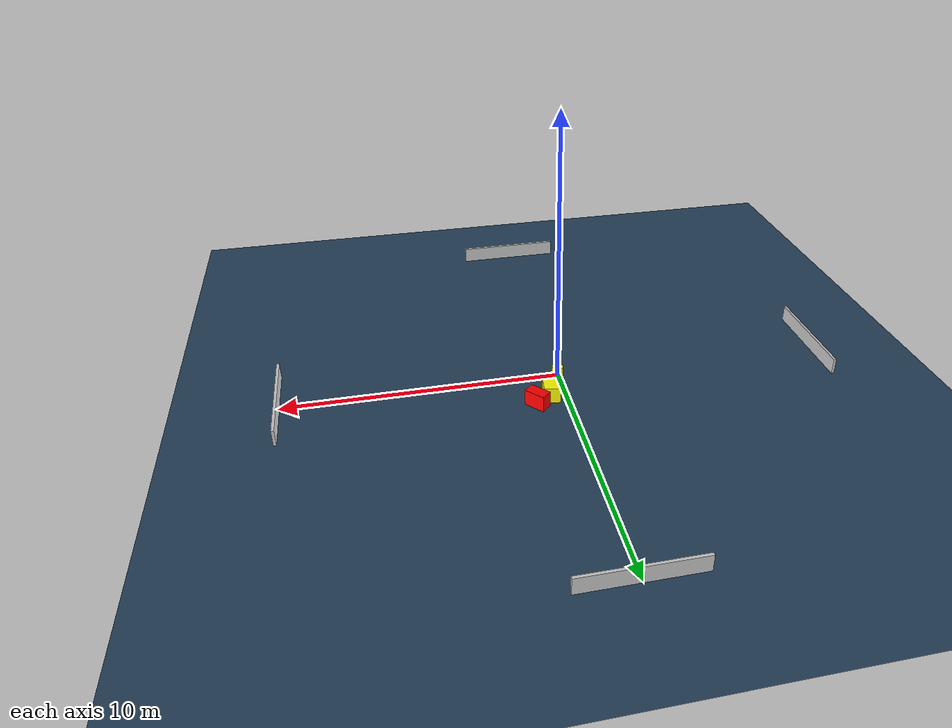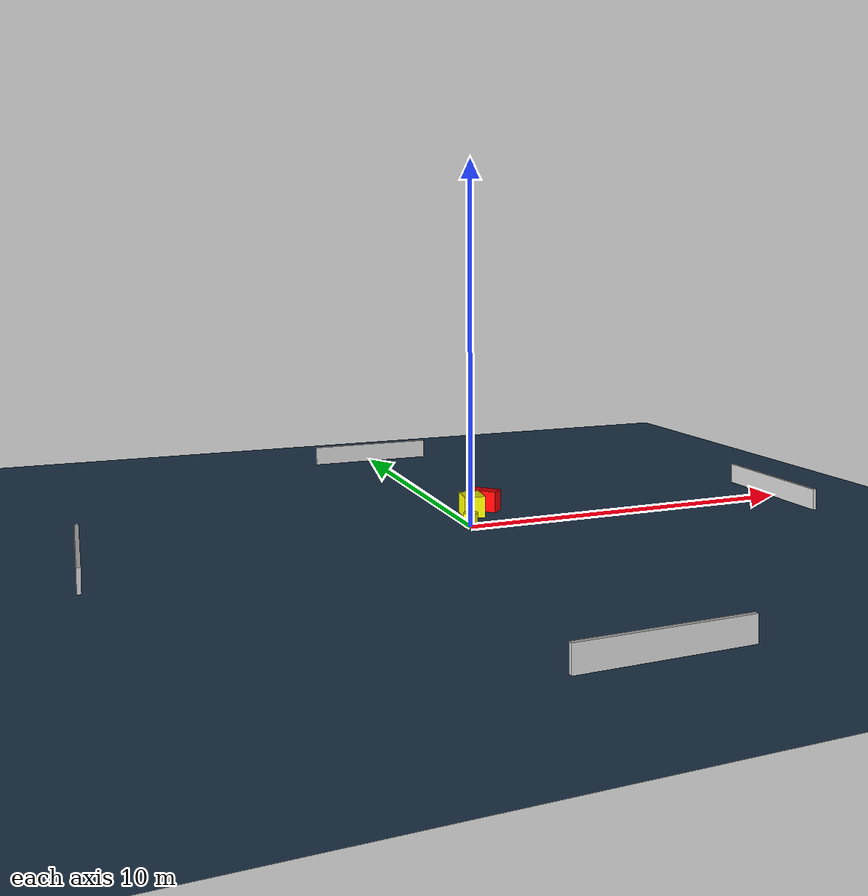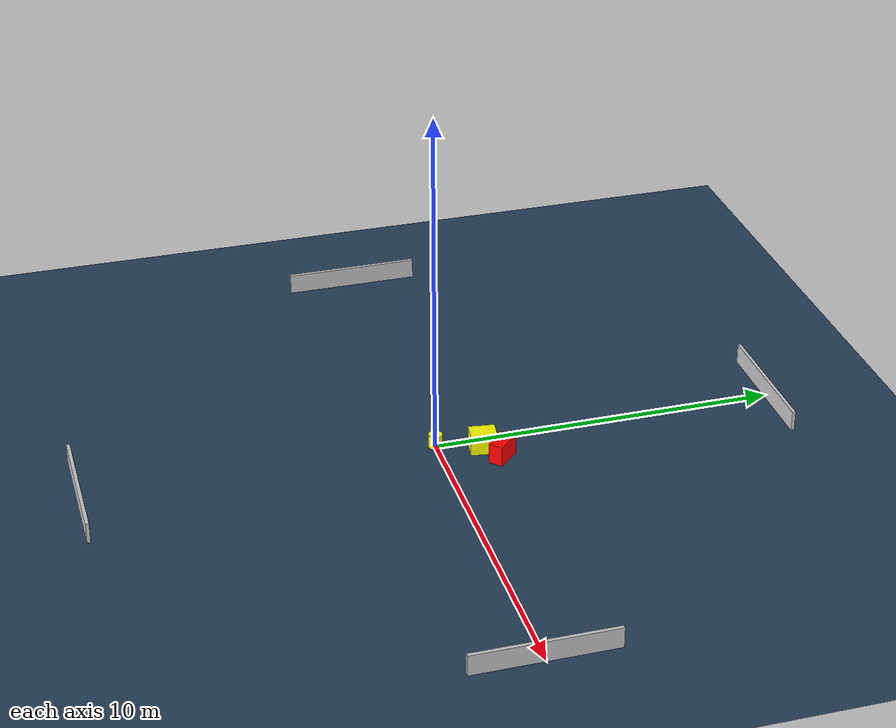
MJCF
<?xml version="1.0" ?>
<mujoco model="generated_environment">
  <option timestep="0.01" integrator="RK4" cone="elliptic"/>
  <default>
    <geom density="1"/>
  </default>
  <asset>
    <texture builtin="gradient" height="3072" name="skybox" rgb1="0.3 0.5 0.7" rgb2="0 0 0" type="skybox" width="512"/>
    <texture builtin="checker" height="300" name="groundplane" rgb1="0.2 0.3 0.4" rgb2="0.1 0.2 0.3" type="2d" width="300"/>
    <material name="groundplane" reflectance="0.2" texrepeat="5 5" texture="groundplane"/>
  </asset>
  <worldbody>
    <light dir="0 0 -1" directional="true" pos="0 0 1.5"/>
    <geom condim="3" friction="0.5 0.005 0.001" material="groundplane" name="floor" pos="0 0 0" size="0 0 0.05" type="plane"/>
    <body name="walls">
      <geom name="wall_1" condim="4" pos="-10.0 0.0 0.3" rgba="0.800000011920929 0.800000011920929 0.800000011920929 1.0" size="0.05 2.0 0.3" type="box"/>
      <geom name="wall_2" condim="4" pos="10.0 0.0 0.3" rgba="0.800000011920929 0.800000011920929 0.800000011920929 1.0" size="0.05 2.0 0.3" type="box"/>
      <geom name="wall_3" condim="4" pos="0.0 -10.0 0.3" rgba="0.800000011920929 0.800000011920929 0.800000011920929 1.0" size="2.0 0.05 0.3" type="box"/>
      <geom name="wall_4" condim="4" pos="0.0 10.0 0.3" rgba="0.800000011920929 0.800000011920929 0.800000011920929 1.0" size="2.0 0.05 0.3" type="box"/>
    </body>
    <body name="robot">
      <joint name="joint_x" type="slide" pos="0 0 0" axis="1 0 0"/>
      <joint name="joint_y" type="slide" pos="0 0 0" axis="0 1 0"/>
      <geom name="robot" type="cylinder" pos="0.0 0.0 0.2" size="0.2 0.2 0.0" mass="5.0" friction="1.0 0.005 0.0001" condim="4" rgba="1.0 1.0 0.0 1.0"/>
    </body>
    <body name="obstacle_1_movable">
      <geom name="obstacle_1_movable" condim="4" pos="0.5145059065204295 1.2311600739296988 0.3" euler="0 0 172.33525125794796" friction="0.0 0.005 0.001" rgba="1.0 1.0 0.0 1.0" size="0.29261668655299466 0.376851268898854 0.3" type="box" mass="0.1"/>
      <joint type="free"/>
    </body>
    <body name="obstacle_2_static">
      <geom name="obstacle_2_static" condim="4" pos="1.1010744448787881 1.6308555801514397 0.3" euler="0 0 132.748824888793" friction="0.0 0.005 0.001" rgba="1.0 0.0 0.0 1.0" size="0.390398051552715 0.20906628727206777 0.3" type="box"/>
    </body>
  </worldbody>
  <actuator>
    <motor name="actuator_x" joint="joint_x" gear="1" ctrlrange="-1 1"/>
    <motor name="actuator_y" joint="joint_y" gear="1" ctrlrange="-1 1"/>
  </actuator>
</mujoco>
